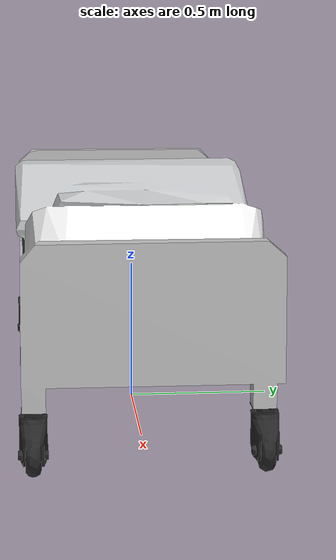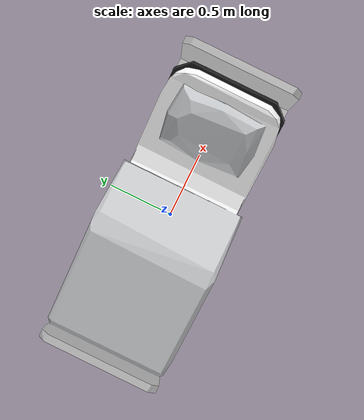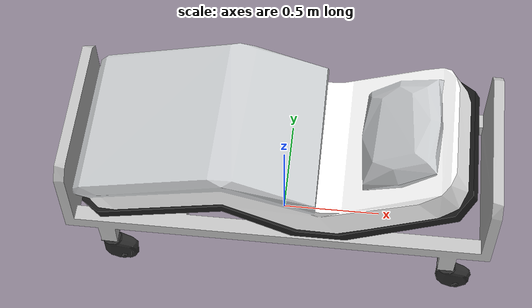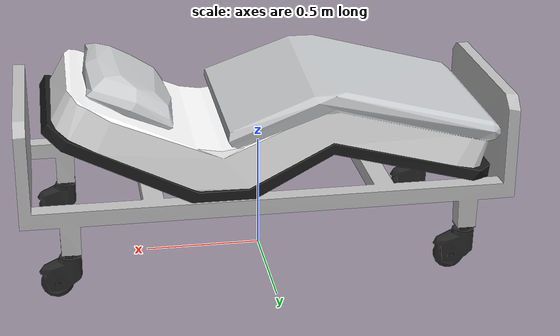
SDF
<?xml version='1.0'?>
<sdf version="1.5">

  <model name="hospital_bed">
    <static>false</static>
    <link name="link">

      <inertial>
        <mass>20.0</mass>
        <inertia>
          <ixx>1</ixx>       <!-- for a box: ixx = 0.083 * mass * (y*y + z*z) -->
          <ixy>0.0</ixy>       <!-- for a box: ixy = 0 -->
          <ixz>0.0</ixz>       <!-- for a box: ixz = 0 -->
          <iyy>1</iyy>       <!-- for a box: iyy = 0.083 * mass * (x*x + z*z) -->
          <iyz>0.0</iyz>       <!-- for a box: iyz = 0 -->
          <izz>1</izz>      <!-- for a box: izz = 0.083 * mass * (x*x + y*y) -->
        </inertia>
      </inertial>

      <collision name="collision">
        <geometry>
          <mesh>
            <uri>model://hospital_bed/hospital_bed_collision.dae</uri>
          </mesh>
        </geometry>
      </collision>

      <visual name="visual">
        <geometry>
          <mesh>
            <uri>model://hospital_bed/hospital_bed.dae</uri>
          </mesh>
        </geometry>
      </visual>

    </link>
  </model>

</sdf>
